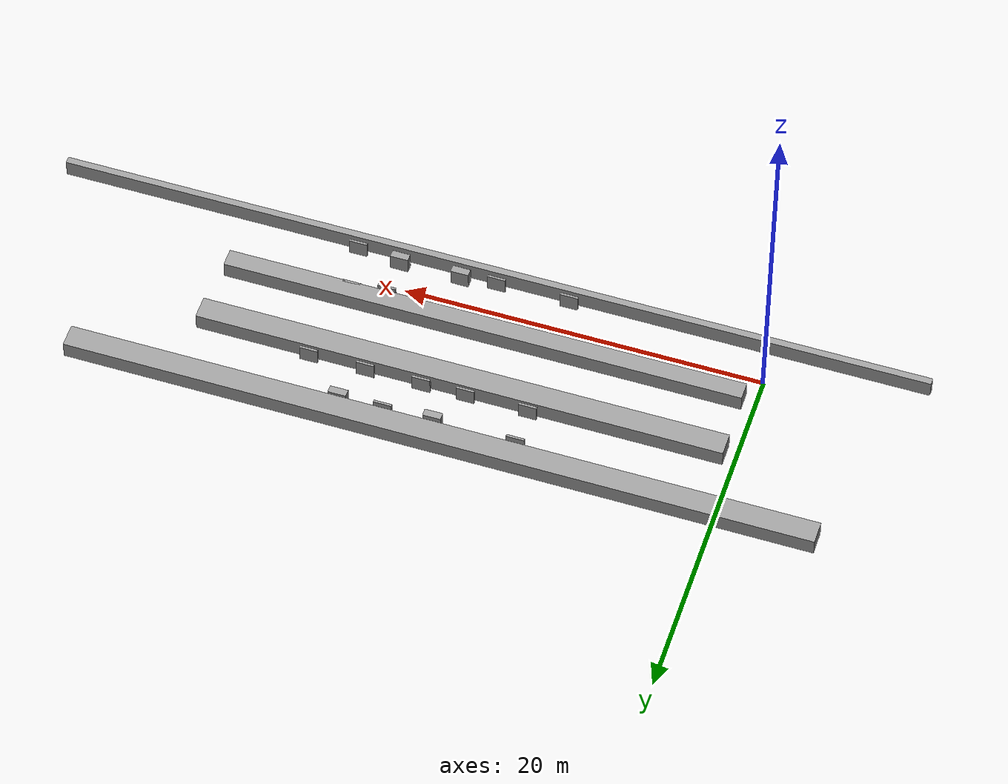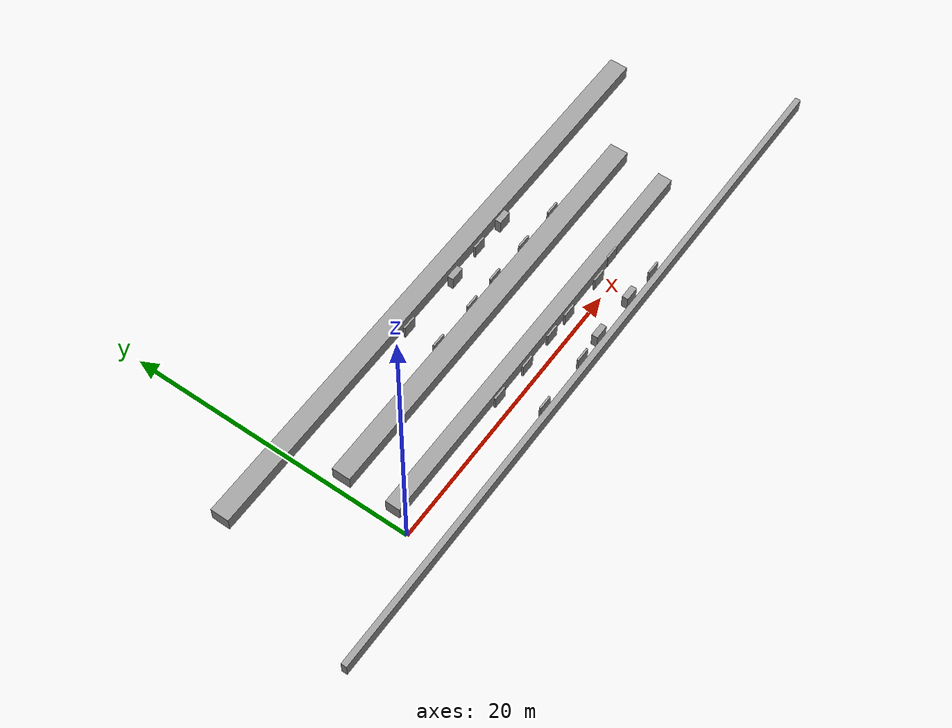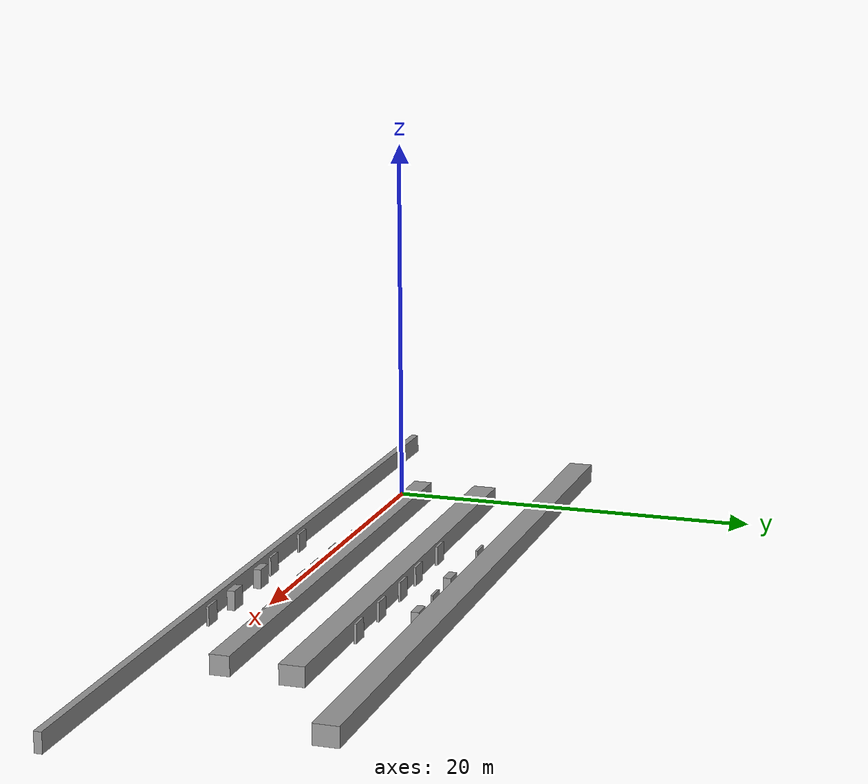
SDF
<sdf version="1.6">
 <world name="default">
  <model name="ground">
   <link name="body">
    <collision name="geom">
     <geometry><plane><normal>0 0 1</normal><size>1000 1000</size></plane></geometry>
     <surface><friction><ode><mu>100</mu><mu2>50</mu2></ode></friction></surface>
    </collision>
   </link>
   <static>1</static>
  </model>
  <model name="unit_box_0">
   <link name="link">
    <inertial>
     <mass>1</mass>
     <inertia>
      <ixx>0.166667</ixx>
      <ixy>0</ixy>
      <ixz>0</ixz>
      <iyy>0.166667</iyy>
      <iyz>0</iyz>
      <izz>0.166667</izz>
     </inertia>
    </inertial>
    <visual name="visual">
     <geometry><box><size>48.7334 0.388398 1</size></box></geometry>
     <material>
      <script><name>Gazebo/Grey</name><uri>file://media/materials/scripts/gazebo.material</uri></script>
      <shader type="pixel"/>
      <ambient>0.3 0.3 0.3 1</ambient>
      <diffuse>0.7 0.7 0.7 1</diffuse>
      <specular>0.01 0.01 0.01 1</specular>
      <emissive>0 0 0 1</emissive>
     </material>
    </visual>
    <collision name="collision">
     <geometry><box><size>48.7334 0.388398 1</size></box></geometry>
     <surface>
      <friction>
       <ode><mu>1</mu><mu2>1</mu2><fdir1>0 0 0</fdir1><slip1>0</slip1><slip2>0</slip2></ode>
       <torsional>
        <coefficient>1</coefficient>
        <patch_radius>0</patch_radius>
        <surface_radius>0</surface_radius>
        <use_patch_radius>1</use_patch_radius>
        <ode><slip>0</slip></ode>
       </torsional>
      </friction>
      <bounce><restitution_coefficient>0</restitution_coefficient><threshold>1e+06</threshold></bounce>
      <contact>
       <collide_without_contact>0</collide_without_contact>
       <collide_without_contact_bitmask>1</collide_without_contact_bitmask>
       <collide_bitmask>1</collide_bitmask>
       <ode>
        <soft_cfm>0</soft_cfm>
        <soft_erp>0.2</soft_erp>
        <kp>1e+13</kp>
        <kd>1</kd>
        <max_vel>0.01</max_vel>
        <min_depth>0</min_depth>
       </ode>
       <bullet>
        <split_impulse>1</split_impulse>
        <split_impulse_penetration_threshold>-0.01</split_impulse_penetration_threshold>
        <soft_cfm>0</soft_cfm>
        <soft_erp>0.2</soft_erp>
        <kp>1e+13</kp>
        <kd>1</kd>
       </bullet>
      </contact>
     </surface>
    </collision>
   </link>
   <static>1</static>
   <pose>15.7619 -2.17322 0.5 0 -0 0</pose>
  </model>
  <model name="unit_box_0_clone">
   <link name="link">
    <inertial>
     <mass>1</mass>
     <inertia>
      <ixx>0.166667</ixx>
      <ixy>0</ixy>
      <ixz>0</ixz>
      <iyy>0.166667</iyy>
      <iyz>0</iyz>
      <izz>0.166667</izz>
     </inertia>
    </inertial>
    <visual name="visual">
     <geometry><box><size>41.397 1.26672 1</size></box></geometry>
     <material>
      <script><name>Gazebo/Grey</name><uri>file://media/materials/scripts/gazebo.material</uri></script>
      <shader type="pixel"/>
      <ambient>0.3 0.3 0.3 1</ambient>
      <diffuse>0.7 0.7 0.7 1</diffuse>
      <specular>0.01 0.01 0.01 1</specular>
      <emissive>0 0 0 1</emissive>
     </material>
    </visual>
    <collision name="collision">
     <geometry><box><size>41.397 1.26672 1</size></box></geometry>
     <surface>
      <friction>
       <ode><mu>1</mu><mu2>1</mu2><fdir1>0 0 0</fdir1><slip1>0</slip1><slip2>0</slip2></ode>
       <torsional>
        <coefficient>1</coefficient>
        <patch_radius>0</patch_radius>
        <surface_radius>0</surface_radius>
        <use_patch_radius>1</use_patch_radius>
        <ode><slip>0</slip></ode>
       </torsional>
      </friction>
      <bounce><restitution_coefficient>0</restitution_coefficient><threshold>1e+06</threshold></bounce>
      <contact>
       <collide_without_contact>0</collide_without_contact>
       <collide_without_contact_bitmask>1</collide_without_contact_bitmask>
       <collide_bitmask>1</collide_bitmask>
       <ode>
        <soft_cfm>0</soft_cfm>
        <soft_erp>0.2</soft_erp>
        <kp>1e+13</kp>
        <kd>1</kd>
        <max_vel>0.01</max_vel>
        <min_depth>0</min_depth>
       </ode>
       <bullet>
        <split_impulse>1</split_impulse>
        <split_impulse_penetration_threshold>-0.01</split_impulse_penetration_threshold>
        <soft_cfm>0</soft_cfm>
        <soft_erp>0.2</soft_erp>
        <kp>1e+13</kp>
        <kd>1</kd>
       </bullet>
      </contact>
     </surface>
    </collision>
   </link>
   <static>1</static>
   <pose>15.1633 9.04141 0.5 0 -0 0</pose>
  </model>
  <model name="unit_box_1_clone_0_clone_4">
   <link name="link">
    <inertial>
     <mass>1</mass>
     <inertia>
      <ixx>0.166667</ixx>
      <ixy>0</ixy>
      <ixz>0</ixz>
      <iyy>0.166667</iyy>
      <iyz>0</iyz>
      <izz>0.166667</izz>
     </inertia>
    </inertial>
    <visual name="visual">
     <geometry><box><size>1 0.413614 1</size></box></geometry>
     <material>
      <script><name>Gazebo/Grey</name><uri>file://media/materials/scripts/gazebo.material</uri></script>
      <shader type="pixel"/>
      <ambient>0.3 0.3 0.3 1</ambient>
      <diffuse>0.7 0.7 0.7 1</diffuse>
      <specular>0.01 0.01 0.01 1</specular>
      <emissive>0 0 0 1</emissive>
     </material>
    </visual>
    <collision name="collision">
     <geometry><box><size>1 0.413614 1</size></box></geometry>
     <surface>
      <friction>
       <ode><mu>1</mu><mu2>1</mu2><fdir1>0 0 0</fdir1><slip1>0</slip1><slip2>0</slip2></ode>
       <torsional>
        <coefficient>1</coefficient>
        <patch_radius>0</patch_radius>
        <surface_radius>0</surface_radius>
        <use_patch_radius>1</use_patch_radius>
        <ode><slip>0</slip></ode>
       </torsional>
      </friction>
      <bounce><restitution_coefficient>0</restitution_coefficient><threshold>1e+06</threshold></bounce>
      <contact>
       <collide_without_contact>0</collide_without_contact>
       <collide_without_contact_bitmask>1</collide_without_contact_bitmask>
       <collide_bitmask>1</collide_bitmask>
       <ode>
        <soft_cfm>0</soft_cfm>
        <soft_erp>0.2</soft_erp>
        <kp>1e+13</kp>
        <kd>1</kd>
        <max_vel>0.01</max_vel>
        <min_depth>0</min_depth>
       </ode>
       <bullet>
        <split_impulse>1</split_impulse>
        <split_impulse_penetration_threshold>-0.01</split_impulse_penetration_threshold>
        <soft_cfm>0</soft_cfm>
        <soft_erp>0.2</soft_erp>
        <kp>1e+13</kp>
        <kd>1</kd>
       </bullet>
      </contact>
     </surface>
    </collision>
   </link>
   <static>1</static>
   <pose>17.3571 -1.53233 0.500035 1e-05 -0 0</pose>
  </model>
  <model name="unit_box_1_clone_0_clone_7">
   <link name="link">
    <inertial>
     <mass>1</mass>
     <inertia>
      <ixx>0.166667</ixx>
      <ixy>0</ixy>
      <ixz>0</ixz>
      <iyy>0.166667</iyy>
      <iyz>0</iyz>
      <izz>0.166667</izz>
     </inertia>
    </inertial>
    <visual name="visual">
     <geometry><box><size>1 0.413614 1</size></box></geometry>
     <material>
      <script><name>Gazebo/Grey</name><uri>file://media/materials/scripts/gazebo.material</uri></script>
      <shader type="pixel"/>
      <ambient>0.3 0.3 0.3 1</ambient>
      <diffuse>0.7 0.7 0.7 1</diffuse>
      <specular>0.01 0.01 0.01 1</specular>
      <emissive>0 0 0 1</emissive>
     </material>
    </visual>
    <collision name="collision">
     <geometry><box><size>1 0.413614 1</size></box></geometry>
     <surface>
      <friction>
       <ode><mu>1</mu><mu2>1</mu2><fdir1>0 0 0</fdir1><slip1>0</slip1><slip2>0</slip2></ode>
       <torsional>
        <coefficient>1</coefficient>
        <patch_radius>0</patch_radius>
        <surface_radius>0</surface_radius>
        <use_patch_radius>1</use_patch_radius>
        <ode><slip>0</slip></ode>
       </torsional>
      </friction>
      <bounce><restitution_coefficient>0</restitution_coefficient><threshold>1e+06</threshold></bounce>
      <contact>
       <collide_without_contact>0</collide_without_contact>
       <collide_without_contact_bitmask>1</collide_without_contact_bitmask>
       <collide_bitmask>1</collide_bitmask>
       <ode>
        <soft_cfm>0</soft_cfm>
        <soft_erp>0.2</soft_erp>
        <kp>1e+13</kp>
        <kd>1</kd>
        <max_vel>0.01</max_vel>
        <min_depth>0</min_depth>
       </ode>
       <bullet>
        <split_impulse>1</split_impulse>
        <split_impulse_penetration_threshold>-0.01</split_impulse_penetration_threshold>
        <soft_cfm>0</soft_cfm>
        <soft_erp>0.2</soft_erp>
        <kp>1e+13</kp>
        <kd>1</kd>
       </bullet>
      </contact>
     </surface>
    </collision>
   </link>
   <static>1</static>
   <pose>15.7661 7.99336 0.50003 1e-05 -0 0</pose>
  </model>
  <model name="unit_box_1_clone_0_clone_8">
   <link name="link">
    <inertial>
     <mass>1</mass>
     <inertia>
      <ixx>0.166667</ixx>
      <ixy>0</ixy>
      <ixz>0</ixz>
      <iyy>0.166667</iyy>
      <iyz>0</iyz>
      <izz>0.166667</izz>
     </inertia>
    </inertial>
    <visual name="visual">
     <geometry><box><size>1 0.413614 1</size></box></geometry>
     <material>
      <script><name>Gazebo/Grey</name><uri>file://media/materials/scripts/gazebo.material</uri></script>
      <shader type="pixel"/>
      <ambient>0.3 0.3 0.3 1</ambient>
      <diffuse>0.7 0.7 0.7 1</diffuse>
      <specular>0.01 0.01 0.01 1</specular>
      <emissive>0 0 0 1</emissive>
     </material>
    </visual>
    <collision name="collision">
     <geometry><box><size>1 0.413614 1</size></box></geometry>
     <surface>
      <friction>
       <ode><mu>1</mu><mu2>1</mu2><fdir1>0 0 0</fdir1><slip1>0</slip1><slip2>0</slip2></ode>
       <torsional>
        <coefficient>1</coefficient>
        <patch_radius>0</patch_radius>
        <surface_radius>0</surface_radius>
        <use_patch_radius>1</use_patch_radius>
        <ode><slip>0</slip></ode>
       </torsional>
      </friction>
      <bounce><restitution_coefficient>0</restitution_coefficient><threshold>1e+06</threshold></bounce>
      <contact>
       <collide_without_contact>0</collide_without_contact>
       <collide_without_contact_bitmask>1</collide_without_contact_bitmask>
       <collide_bitmask>1</collide_bitmask>
       <ode>
        <soft_cfm>0</soft_cfm>
        <soft_erp>0.2</soft_erp>
        <kp>1e+13</kp>
        <kd>1</kd>
        <max_vel>0.01</max_vel>
        <min_depth>0</min_depth>
       </ode>
       <bullet>
        <split_impulse>1</split_impulse>
        <split_impulse_penetration_threshold>-0.01</split_impulse_penetration_threshold>
        <soft_cfm>0</soft_cfm>
        <soft_erp>0.2</soft_erp>
        <kp>1e+13</kp>
        <kd>1</kd>
       </bullet>
      </contact>
     </surface>
    </collision>
   </link>
   <static>1</static>
   <pose>20.9877 8.09078 0.500032 1e-05 -0 0</pose>
  </model>
  <model name="unit_box_1_clone_0_clone_11">
   <link name="link">
    <inertial>
     <mass>1</mass>
     <inertia>
      <ixx>0.166667</ixx>
      <ixy>0</ixy>
      <ixz>0</ixz>
      <iyy>0.166667</iyy>
      <iyz>0</iyz>
      <izz>0.166667</izz>
     </inertia>
    </inertial>
    <visual name="visual">
     <geometry><box><size>1 0.413614 1</size></box></geometry>
     <material>
      <script><name>Gazebo/Grey</name><uri>file://media/materials/scripts/gazebo.material</uri></script>
      <shader type="pixel"/>
      <ambient>0.3 0.3 0.3 1</ambient>
      <diffuse>0.7 0.7 0.7 1</diffuse>
      <specular>0.01 0.01 0.01 1</specular>
      <emissive>0 0 0 1</emissive>
     </material>
    </visual>
    <collision name="collision">
     <geometry><box><size>1 0.413614 1</size></box></geometry>
     <surface>
      <friction>
       <ode><mu>1</mu><mu2>1</mu2><fdir1>0 0 0</fdir1><slip1>0</slip1><slip2>0</slip2></ode>
       <torsional>
        <coefficient>1</coefficient>
        <patch_radius>0</patch_radius>
        <surface_radius>0</surface_radius>
        <use_patch_radius>1</use_patch_radius>
        <ode><slip>0</slip></ode>
       </torsional>
      </friction>
      <bounce><restitution_coefficient>0</restitution_coefficient><threshold>1e+06</threshold></bounce>
      <contact>
       <collide_without_contact>0</collide_without_contact>
       <collide_without_contact_bitmask>1</collide_without_contact_bitmask>
       <collide_bitmask>1</collide_bitmask>
       <ode>
        <soft_cfm>0</soft_cfm>
        <soft_erp>0.2</soft_erp>
        <kp>1e+13</kp>
        <kd>1</kd>
        <max_vel>0.01</max_vel>
        <min_depth>0</min_depth>
       </ode>
       <bullet>
        <split_impulse>1</split_impulse>
        <split_impulse_penetration_threshold>-0.01</split_impulse_penetration_threshold>
        <soft_cfm>0</soft_cfm>
        <soft_erp>0.2</soft_erp>
        <kp>1e+13</kp>
        <kd>1</kd>
       </bullet>
      </contact>
     </surface>
    </collision>
   </link>
   <static>1</static>
   <pose>20.7603 -1.50473 0.500033 1e-05 -0 0</pose>
  </model>
  <model name="unit_box_1_clone_0_clone_16_clone_0">
   <link name="link">
    <inertial>
     <mass>1</mass>
     <inertia>
      <ixx>0.166667</ixx>
      <ixy>0</ixy>
      <ixz>0</ixz>
      <iyy>0.166667</iyy>
      <iyz>0</iyz>
      <izz>0.166667</izz>
     </inertia>
    </inertial>
    <visual name="visual">
     <geometry><box><size>1 0.12971 1</size></box></geometry>
     <material>
      <script><name>Gazebo/Grey</name><uri>file://media/materials/scripts/gazebo.material</uri></script>
      <shader type="pixel"/>
      <ambient>0.3 0.3 0.3 1</ambient>
      <diffuse>0.7 0.7 0.7 1</diffuse>
      <specular>0.01 0.01 0.01 1</specular>
      <emissive>0 0 0 1</emissive>
     </material>
    </visual>
    <collision name="collision">
     <geometry><box><size>1 0.12971 1</size></box></geometry>
     <surface>
      <friction>
       <ode><mu>1</mu><mu2>1</mu2><fdir1>0 0 0</fdir1><slip1>0</slip1><slip2>0</slip2></ode>
       <torsional>
        <coefficient>1</coefficient>
        <patch_radius>0</patch_radius>
        <surface_radius>0</surface_radius>
        <use_patch_radius>1</use_patch_radius>
        <ode><slip>0</slip></ode>
       </torsional>
      </friction>
      <bounce><restitution_coefficient>0</restitution_coefficient><threshold>1e+06</threshold></bounce>
      <contact>
       <collide_without_contact>0</collide_without_contact>
       <collide_without_contact_bitmask>1</collide_without_contact_bitmask>
       <collide_bitmask>1</collide_bitmask>
       <ode>
        <soft_cfm>0</soft_cfm>
        <soft_erp>0.2</soft_erp>
        <kp>1e+13</kp>
        <kd>1</kd>
        <max_vel>0.01</max_vel>
        <min_depth>0</min_depth>
       </ode>
       <bullet>
        <split_impulse>1</split_impulse>
        <split_impulse_penetration_threshold>-0.01</split_impulse_penetration_threshold>
        <soft_cfm>0</soft_cfm>
        <soft_erp>0.2</soft_erp>
        <kp>1e+13</kp>
        <kd>1</kd>
       </bullet>
      </contact>
     </surface>
    </collision>
   </link>
   <static>1</static>
   <pose>11.3045 -1.70035 0.500002 1e-05 -0 0</pose>
  </model>
  <model name="unit_box_1_clone_0_clone_16_clone_1">
   <link name="link">
    <inertial>
     <mass>1</mass>
     <inertia>
      <ixx>0.166667</ixx>
      <ixy>0</ixy>
      <ixz>0</ixz>
      <iyy>0.166667</iyy>
      <iyz>0</iyz>
      <izz>0.166667</izz>
     </inertia>
    </inertial>
    <visual name="visual">
     <geometry><box><size>1 0.12971 1</size></box></geometry>
     <material>
      <script><name>Gazebo/Grey</name><uri>file://media/materials/scripts/gazebo.material</uri></script>
      <shader type="pixel"/>
      <ambient>0.3 0.3 0.3 1</ambient>
      <diffuse>0.7 0.7 0.7 1</diffuse>
      <specular>0.01 0.01 0.01 1</specular>
      <emissive>0 0 0 1</emissive>
     </material>
    </visual>
    <collision name="collision">
     <geometry><box><size>1 0.12971 1</size></box></geometry>
     <surface>
      <friction>
       <ode><mu>1</mu><mu2>1</mu2><fdir1>0 0 0</fdir1><slip1>0</slip1><slip2>0</slip2></ode>
       <torsional>
        <coefficient>1</coefficient>
        <patch_radius>0</patch_radius>
        <surface_radius>0</surface_radius>
        <use_patch_radius>1</use_patch_radius>
        <ode><slip>0</slip></ode>
       </torsional>
      </friction>
      <bounce><restitution_coefficient>0</restitution_coefficient><threshold>1e+06</threshold></bounce>
      <contact>
       <collide_without_contact>0</collide_without_contact>
       <collide_without_contact_bitmask>1</collide_without_contact_bitmask>
       <collide_bitmask>1</collide_bitmask>
       <ode>
        <soft_cfm>0</soft_cfm>
        <soft_erp>0.2</soft_erp>
        <kp>1e+13</kp>
        <kd>1</kd>
        <max_vel>0.01</max_vel>
        <min_depth>0</min_depth>
       </ode>
       <bullet>
        <split_impulse>1</split_impulse>
        <split_impulse_penetration_threshold>-0.01</split_impulse_penetration_threshold>
        <soft_cfm>0</soft_cfm>
        <soft_erp>0.2</soft_erp>
        <kp>1e+13</kp>
        <kd>1</kd>
       </bullet>
      </contact>
     </surface>
    </collision>
   </link>
   <static>1</static>
   <pose>15.3663 -1.65278 0.500002 1e-05 -0 0</pose>
  </model>
  <model name="unit_box_1_clone_0_clone_16_clone_2">
   <link name="link">
    <inertial>
     <mass>1</mass>
     <inertia>
      <ixx>0.166667</ixx>
      <ixy>0</ixy>
      <ixz>0</ixz>
      <iyy>0.166667</iyy>
      <iyz>0</iyz>
      <izz>0.166667</izz>
     </inertia>
    </inertial>
    <visual name="visual">
     <geometry><box><size>1 0.12971 1</size></box></geometry>
     <material>
      <script><name>Gazebo/Grey</name><uri>file://media/materials/scripts/gazebo.material</uri></script>
      <shader type="pixel"/>
      <ambient>0.3 0.3 0.3 1</ambient>
      <diffuse>0.7 0.7 0.7 1</diffuse>
      <specular>0.01 0.01 0.01 1</specular>
      <emissive>0 0 0 1</emissive>
     </material>
    </visual>
    <collision name="collision">
     <geometry><box><size>1 0.12971 1</size></box></geometry>
     <surface>
      <friction>
       <ode><mu>1</mu><mu2>1</mu2><fdir1>0 0 0</fdir1><slip1>0</slip1><slip2>0</slip2></ode>
       <torsional>
        <coefficient>1</coefficient>
        <patch_radius>0</patch_radius>
        <surface_radius>0</surface_radius>
        <use_patch_radius>1</use_patch_radius>
        <ode><slip>0</slip></ode>
       </torsional>
      </friction>
      <bounce><restitution_coefficient>0</restitution_coefficient><threshold>1e+06</threshold></bounce>
      <contact>
       <collide_without_contact>0</collide_without_contact>
       <collide_without_contact_bitmask>1</collide_without_contact_bitmask>
       <collide_bitmask>1</collide_bitmask>
       <ode>
        <soft_cfm>0</soft_cfm>
        <soft_erp>0.2</soft_erp>
        <kp>1e+13</kp>
        <kd>1</kd>
        <max_vel>0.01</max_vel>
        <min_depth>0</min_depth>
       </ode>
       <bullet>
        <split_impulse>1</split_impulse>
        <split_impulse_penetration_threshold>-0.01</split_impulse_penetration_threshold>
        <soft_cfm>0</soft_cfm>
        <soft_erp>0.2</soft_erp>
        <kp>1e+13</kp>
        <kd>1</kd>
       </bullet>
      </contact>
     </surface>
    </collision>
   </link>
   <static>1</static>
   <pose>23.1911 -1.67165 0.500002 1e-05 -0 0</pose>
  </model>
  <model name="unit_box_1_clone_0_clone_16_clone_8">
   <link name="link">
    <inertial>
     <mass>1</mass>
     <inertia>
      <ixx>0.166667</ixx>
      <ixy>0</ixy>
      <ixz>0</ixz>
      <iyy>0.166667</iyy>
      <iyz>0</iyz>
      <izz>0.166667</izz>
     </inertia>
    </inertial>
    <visual name="visual">
     <geometry><box><size>1 0.12971 1</size></box></geometry>
     <material>
      <script><name>Gazebo/Grey</name><uri>file://media/materials/scripts/gazebo.material</uri></script>
      <shader type="pixel"/>
      <ambient>0.3 0.3 0.3 1</ambient>
      <diffuse>0.7 0.7 0.7 1</diffuse>
      <specular>0.01 0.01 0.01 1</specular>
      <emissive>0 0 0 1</emissive>
     </material>
    </visual>
    <collision name="collision">
     <geometry><box><size>1 0.12971 1</size></box></geometry>
     <surface>
      <friction>
       <ode><mu>1</mu><mu2>1</mu2><fdir1>0 0 0</fdir1><slip1>0</slip1><slip2>0</slip2></ode>
       <torsional>
        <coefficient>1</coefficient>
        <patch_radius>0</patch_radius>
        <surface_radius>0</surface_radius>
        <use_patch_radius>1</use_patch_radius>
        <ode><slip>0</slip></ode>
       </torsional>
      </friction>
      <bounce><restitution_coefficient>0</restitution_coefficient><threshold>1e+06</threshold></bounce>
      <contact>
       <collide_without_contact>0</collide_without_contact>
       <collide_without_contact_bitmask>1</collide_without_contact_bitmask>
       <collide_bitmask>1</collide_bitmask>
       <ode>
        <soft_cfm>0</soft_cfm>
        <soft_erp>0.2</soft_erp>
        <kp>1e+13</kp>
        <kd>1</kd>
        <max_vel>0.01</max_vel>
        <min_depth>0</min_depth>
       </ode>
       <bullet>
        <split_impulse>1</split_impulse>
        <split_impulse_penetration_threshold>-0.01</split_impulse_penetration_threshold>
        <soft_cfm>0</soft_cfm>
        <soft_erp>0.2</soft_erp>
        <kp>1e+13</kp>
        <kd>1</kd>
       </bullet>
      </contact>
     </surface>
    </collision>
   </link>
   <static>1</static>
   <pose>18.5 8.11859 0.499998 1e-05 -0 0</pose>
  </model>
  <model name="unit_box_1_clone_0_clone_16_clone_9">
   <link name="link">
    <inertial>
     <mass>1</mass>
     <inertia>
      <ixx>0.166667</ixx>
      <ixy>0</ixy>
      <ixz>0</ixz>
      <iyy>0.166667</iyy>
      <iyz>0</iyz>
      <izz>0.166667</izz>
     </inertia>
    </inertial>
    <visual name="visual">
     <geometry><box><size>1 0.12971 1</size></box></geometry>
     <material>
      <script><name>Gazebo/Grey</name><uri>file://media/materials/scripts/gazebo.material</uri></script>
      <shader type="pixel"/>
      <ambient>0.3 0.3 0.3 1</ambient>
      <diffuse>0.7 0.7 0.7 1</diffuse>
      <specular>0.01 0.01 0.01 1</specular>
      <emissive>0 0 0 1</emissive>
     </material>
    </visual>
    <collision name="collision">
     <geometry><box><size>1 0.12971 1</size></box></geometry>
     <surface>
      <friction>
       <ode><mu>1</mu><mu2>1</mu2><fdir1>0 0 0</fdir1><slip1>0</slip1><slip2>0</slip2></ode>
       <torsional>
        <coefficient>1</coefficient>
        <patch_radius>0</patch_radius>
        <surface_radius>0</surface_radius>
        <use_patch_radius>1</use_patch_radius>
        <ode><slip>0</slip></ode>
       </torsional>
      </friction>
      <bounce><restitution_coefficient>0</restitution_coefficient><threshold>1e+06</threshold></bounce>
      <contact>
       <collide_without_contact>0</collide_without_contact>
       <collide_without_contact_bitmask>1</collide_without_contact_bitmask>
       <collide_bitmask>1</collide_bitmask>
       <ode>
        <soft_cfm>0</soft_cfm>
        <soft_erp>0.2</soft_erp>
        <kp>1e+13</kp>
        <kd>1</kd>
        <max_vel>0.01</max_vel>
        <min_depth>0</min_depth>
       </ode>
       <bullet>
        <split_impulse>1</split_impulse>
        <split_impulse_penetration_threshold>-0.01</split_impulse_penetration_threshold>
        <soft_cfm>0</soft_cfm>
        <soft_erp>0.2</soft_erp>
        <kp>1e+13</kp>
        <kd>1</kd>
       </bullet>
      </contact>
     </surface>
    </collision>
   </link>
   <static>1</static>
   <pose>11.1735 8.09045 0.499998 1e-05 -0 0</pose>
  </model>
  <model name="unit_box_0_clone_0_clone">
   <link name="link">
    <inertial>
     <mass>1</mass>
     <inertia>
      <ixx>0.166667</ixx>
      <ixy>0</ixy>
      <ixz>0</ixz>
      <iyy>0.166667</iyy>
      <iyz>0</iyz>
      <izz>0.166667</izz>
     </inertia>
    </inertial>
    <visual name="visual">
     <geometry><box><size>29.2615 1.26672 1</size></box></geometry>
     <material>
      <script><name>Gazebo/Grey</name><uri>file://media/materials/scripts/gazebo.material</uri></script>
      <shader type="pixel"/>
      <ambient>0.3 0.3 0.3 1</ambient>
      <diffuse>0.7 0.7 0.7 1</diffuse>
      <specular>0.01 0.01 0.01 1</specular>
      <emissive>0 0 0 1</emissive>
     </material>
    </visual>
    <collision name="collision">
     <geometry><box><size>29.2615 1.26672 1</size></box></geometry>
     <surface>
      <friction>
       <ode><mu>1</mu><mu2>1</mu2><fdir1>0 0 0</fdir1><slip1>0</slip1><slip2>0</slip2></ode>
       <torsional>
        <coefficient>1</coefficient>
        <patch_radius>0</patch_radius>
        <surface_radius>0</surface_radius>
        <use_patch_radius>1</use_patch_radius>
        <ode><slip>0</slip></ode>
       </torsional>
      </friction>
      <bounce><restitution_coefficient>0</restitution_coefficient><threshold>1e+06</threshold></bounce>
      <contact>
       <collide_without_contact>0</collide_without_contact>
       <collide_without_contact_bitmask>1</collide_without_contact_bitmask>
       <collide_bitmask>1</collide_bitmask>
       <ode>
        <soft_cfm>0</soft_cfm>
        <soft_erp>0.2</soft_erp>
        <kp>1e+13</kp>
        <kd>1</kd>
        <max_vel>0.01</max_vel>
        <min_depth>0</min_depth>
       </ode>
       <bullet>
        <split_impulse>1</split_impulse>
        <split_impulse_penetration_threshold>-0.01</split_impulse_penetration_threshold>
        <soft_cfm>0</soft_cfm>
        <soft_erp>0.2</soft_erp>
        <kp>1e+13</kp>
        <kd>1</kd>
       </bullet>
      </contact>
     </surface>
    </collision>
   </link>
   <static>1</static>
   <pose>15.1869 5.09819 0.5 0 -0 0</pose>
  </model>
  <model name="unit_box_1_clone_0_clone_16_clone_3_clone">
   <link name="link">
    <inertial>
     <mass>1</mass>
     <inertia>
      <ixx>0.166667</ixx>
      <ixy>0</ixy>
      <ixz>0</ixz>
      <iyy>0.166667</iyy>
      <iyz>0</iyz>
      <izz>0.166667</izz>
     </inertia>
    </inertial>
    <visual name="visual">
     <geometry><box><size>1 0.12971 1</size></box></geometry>
     <material>
      <script><name>Gazebo/Grey</name><uri>file://media/materials/scripts/gazebo.material</uri></script>
      <shader type="pixel"/>
      <ambient>0.3 0.3 0.3 1</ambient>
      <diffuse>0.7 0.7 0.7 1</diffuse>
      <specular>0.01 0.01 0.01 1</specular>
      <emissive>0 0 0 1</emissive>
     </material>
    </visual>
    <collision name="collision">
     <geometry><box><size>1 0.12971 1</size></box></geometry>
     <surface>
      <friction>
       <ode><mu>1</mu><mu2>1</mu2><fdir1>0 0 0</fdir1><slip1>0</slip1><slip2>0</slip2></ode>
       <torsional>
        <coefficient>1</coefficient>
        <patch_radius>0</patch_radius>
        <surface_radius>0</surface_radius>
        <use_patch_radius>1</use_patch_radius>
        <ode><slip>0</slip></ode>
       </torsional>
      </friction>
      <bounce><restitution_coefficient>0</restitution_coefficient><threshold>1e+06</threshold></bounce>
      <contact>
       <collide_without_contact>0</collide_without_contact>
       <collide_without_contact_bitmask>1</collide_without_contact_bitmask>
       <collide_bitmask>1</collide_bitmask>
       <ode>
        <soft_cfm>0</soft_cfm>
        <soft_erp>0.2</soft_erp>
        <kp>1e+13</kp>
        <kd>1</kd>
        <max_vel>0.01</max_vel>
        <min_depth>0</min_depth>
       </ode>
       <bullet>
        <split_impulse>1</split_impulse>
        <split_impulse_penetration_threshold>-0.01</split_impulse_penetration_threshold>
        <soft_cfm>0</soft_cfm>
        <soft_erp>0.2</soft_erp>
        <kp>1e+13</kp>
        <kd>1</kd>
       </bullet>
      </contact>
     </surface>
    </collision>
   </link>
   <static>1</static>
   <pose>20.754 0.722945 0.5 1e-05 -0 0</pose>
  </model>
  <model name="unit_box_1_clone_0_clone_16_clone_3_clone_0">
   <link name="link">
    <inertial>
     <mass>1</mass>
     <inertia>
      <ixx>0.166667</ixx>
      <ixy>0</ixy>
      <ixz>0</ixz>
      <iyy>0.166667</iyy>
      <iyz>0</iyz>
      <izz>0.166667</izz>
     </inertia>
    </inertial>
    <visual name="visual">
     <geometry><box><size>1 0.12971 1</size></box></geometry>
     <material>
      <script><name>Gazebo/Grey</name><uri>file://media/materials/scripts/gazebo.material</uri></script>
      <shader type="pixel"/>
      <ambient>0.3 0.3 0.3 1</ambient>
      <diffuse>0.7 0.7 0.7 1</diffuse>
      <specular>0.01 0.01 0.01 1</specular>
      <emissive>0 0 0 1</emissive>
     </material>
    </visual>
    <collision name="collision">
     <geometry><box><size>1 0.12971 1</size></box></geometry>
     <surface>
      <friction>
       <ode><mu>1</mu><mu2>1</mu2><fdir1>0 0 0</fdir1><slip1>0</slip1><slip2>0</slip2></ode>
       <torsional>
        <coefficient>1</coefficient>
        <patch_radius>0</patch_radius>
        <surface_radius>0</surface_radius>
        <use_patch_radius>1</use_patch_radius>
        <ode><slip>0</slip></ode>
       </torsional>
      </friction>
      <bounce><restitution_coefficient>0</restitution_coefficient><threshold>1e+06</threshold></bounce>
      <contact>
       <collide_without_contact>0</collide_without_contact>
       <collide_without_contact_bitmask>1</collide_without_contact_bitmask>
       <collide_bitmask>1</collide_bitmask>
       <ode>
        <soft_cfm>0</soft_cfm>
        <soft_erp>0.2</soft_erp>
        <kp>1e+13</kp>
        <kd>1</kd>
        <max_vel>0.01</max_vel>
        <min_depth>0</min_depth>
       </ode>
       <bullet>
        <split_impulse>1</split_impulse>
        <split_impulse_penetration_threshold>-0.01</split_impulse_penetration_threshold>
        <soft_cfm>0</soft_cfm>
        <soft_erp>0.2</soft_erp>
        <kp>1e+13</kp>
        <kd>1</kd>
       </bullet>
      </contact>
     </surface>
    </collision>
   </link>
   <static>1</static>
   <pose>22.654 1.02012 0.500003 1e-05 -0 0</pose>
  </model>
  <model name="unit_box_1_clone_0_clone_16_clone_3_clone_2">
   <link name="link">
    <inertial>
     <mass>1</mass>
     <inertia>
      <ixx>0.166667</ixx>
      <ixy>0</ixy>
      <ixz>0</ixz>
      <iyy>0.166667</iyy>
      <iyz>0</iyz>
      <izz>0.166667</izz>
     </inertia>
    </inertial>
    <visual name="visual">
     <geometry><box><size>1 0.12971 1</size></box></geometry>
     <material>
      <script><name>Gazebo/Grey</name><uri>file://media/materials/scripts/gazebo.material</uri></script>
      <shader type="pixel"/>
      <ambient>0.3 0.3 0.3 1</ambient>
      <diffuse>0.7 0.7 0.7 1</diffuse>
      <specular>0.01 0.01 0.01 1</specular>
      <emissive>0 0 0 1</emissive>
     </material>
    </visual>
    <collision name="collision">
     <geometry><box><size>1 0.12971 1</size></box></geometry>
     <surface>
      <friction>
       <ode><mu>1</mu><mu2>1</mu2><fdir1>0 0 0</fdir1><slip1>0</slip1><slip2>0</slip2></ode>
       <torsional>
        <coefficient>1</coefficient>
        <patch_radius>0</patch_radius>
        <surface_radius>0</surface_radius>
        <use_patch_radius>1</use_patch_radius>
        <ode><slip>0</slip></ode>
       </torsional>
      </friction>
      <bounce><restitution_coefficient>0</restitution_coefficient><threshold>1e+06</threshold></bounce>
      <contact>
       <collide_without_contact>0</collide_without_contact>
       <collide_without_contact_bitmask>1</collide_without_contact_bitmask>
       <collide_bitmask>1</collide_bitmask>
       <ode>
        <soft_cfm>0</soft_cfm>
        <soft_erp>0.2</soft_erp>
        <kp>1e+13</kp>
        <kd>1</kd>
        <max_vel>0.01</max_vel>
        <min_depth>0</min_depth>
       </ode>
       <bullet>
        <split_impulse>1</split_impulse>
        <split_impulse_penetration_threshold>-0.01</split_impulse_penetration_threshold>
        <soft_cfm>0</soft_cfm>
        <soft_erp>0.2</soft_erp>
        <kp>1e+13</kp>
        <kd>1</kd>
       </bullet>
      </contact>
     </surface>
    </collision>
   </link>
   <static>1</static>
   <pose>15.6998 0.773258 0.500001 1e-05 -0 0</pose>
  </model>
  <model name="unit_box_1_clone_0_clone_16_clone_3_clone_3">
   <link name="link">
    <inertial>
     <mass>1</mass>
     <inertia>
      <ixx>0.166667</ixx>
      <ixy>0</ixy>
      <ixz>0</ixz>
      <iyy>0.166667</iyy>
      <iyz>0</iyz>
      <izz>0.166667</izz>
     </inertia>
    </inertial>
    <visual name="visual">
     <geometry><box><size>1 0.12971 1</size></box></geometry>
     <material>
      <script><name>Gazebo/Grey</name><uri>file://media/materials/scripts/gazebo.material</uri></script>
      <shader type="pixel"/>
      <ambient>0.3 0.3 0.3 1</ambient>
      <diffuse>0.7 0.7 0.7 1</diffuse>
      <specular>0.01 0.01 0.01 1</specular>
      <emissive>0 0 0 1</emissive>
     </material>
    </visual>
    <collision name="collision">
     <geometry><box><size>1 0.12971 1</size></box></geometry>
     <surface>
      <friction>
       <ode><mu>1</mu><mu2>1</mu2><fdir1>0 0 0</fdir1><slip1>0</slip1><slip2>0</slip2></ode>
       <torsional>
        <coefficient>1</coefficient>
        <patch_radius>0</patch_radius>
        <surface_radius>0</surface_radius>
        <use_patch_radius>1</use_patch_radius>
        <ode><slip>0</slip></ode>
       </torsional>
      </friction>
      <bounce><restitution_coefficient>0</restitution_coefficient><threshold>1e+06</threshold></bounce>
      <contact>
       <collide_without_contact>0</collide_without_contact>
       <collide_without_contact_bitmask>1</collide_without_contact_bitmask>
       <collide_bitmask>1</collide_bitmask>
       <ode>
        <soft_cfm>0</soft_cfm>
        <soft_erp>0.2</soft_erp>
        <kp>1e+13</kp>
        <kd>1</kd>
        <max_vel>0.01</max_vel>
        <min_depth>0</min_depth>
       </ode>
       <bullet>
        <split_impulse>1</split_impulse>
        <split_impulse_penetration_threshold>-0.01</split_impulse_penetration_threshold>
        <soft_cfm>0</soft_cfm>
        <soft_erp>0.2</soft_erp>
        <kp>1e+13</kp>
        <kd>1</kd>
       </bullet>
      </contact>
     </surface>
    </collision>
   </link>
   <static>1</static>
   <pose>10.2984 0.818333 0.500001 1e-05 -0 0</pose>
  </model>
  <model name="unit_box_1_clone_0_clone_16_clone_3_clone_8">
   <link name="link">
    <inertial>
     <mass>1</mass>
     <inertia>
      <ixx>0.166667</ixx>
      <ixy>0</ixy>
      <ixz>0</ixz>
      <iyy>0.166667</iyy>
      <iyz>0</iyz>
      <izz>0.166667</izz>
     </inertia>
    </inertial>
    <visual name="visual">
     <geometry><box><size>1 0.12971 1</size></box></geometry>
     <material>
      <script><name>Gazebo/Grey</name><uri>file://media/materials/scripts/gazebo.material</uri></script>
      <shader type="pixel"/>
      <ambient>0.3 0.3 0.3 1</ambient>
      <diffuse>0.7 0.7 0.7 1</diffuse>
      <specular>0.01 0.01 0.01 1</specular>
      <emissive>0 0 0 1</emissive>
     </material>
    </visual>
    <collision name="collision">
     <geometry><box><size>1 0.12971 1</size></box></geometry>
     <surface>
      <friction>
       <ode><mu>1</mu><mu2>1</mu2><fdir1>0 0 0</fdir1><slip1>0</slip1><slip2>0</slip2></ode>
       <torsional>
        <coefficient>1</coefficient>
        <patch_radius>0</patch_radius>
        <surface_radius>0</surface_radius>
        <use_patch_radius>1</use_patch_radius>
        <ode><slip>0</slip></ode>
       </torsional>
      </friction>
      <bounce><restitution_coefficient>0</restitution_coefficient><threshold>1e+06</threshold></bounce>
      <contact>
       <collide_without_contact>0</collide_without_contact>
       <collide_without_contact_bitmask>1</collide_without_contact_bitmask>
       <collide_bitmask>1</collide_bitmask>
       <ode>
        <soft_cfm>0</soft_cfm>
        <soft_erp>0.2</soft_erp>
        <kp>1e+13</kp>
        <kd>1</kd>
        <max_vel>0.01</max_vel>
        <min_depth>0</min_depth>
       </ode>
       <bullet>
        <split_impulse>1</split_impulse>
        <split_impulse_penetration_threshold>-0.01</split_impulse_penetration_threshold>
        <soft_cfm>0</soft_cfm>
        <soft_erp>0.2</soft_erp>
        <kp>1e+13</kp>
        <kd>1</kd>
       </bullet>
      </contact>
     </surface>
    </collision>
   </link>
   <static>1</static>
   <pose>11.1855 5.92083 0.500001 1e-05 -0 0</pose>
  </model>
  <model name="unit_box_1_clone_0_clone_16_clone_3_clone_9">
   <link name="link">
    <inertial>
     <mass>1</mass>
     <inertia>
      <ixx>0.166667</ixx>
      <ixy>0</ixy>
      <ixz>0</ixz>
      <iyy>0.166667</iyy>
      <iyz>0</iyz>
      <izz>0.166667</izz>
     </inertia>
    </inertial>
    <visual name="visual">
     <geometry><box><size>1 0.12971 1</size></box></geometry>
     <material>
      <script><name>Gazebo/Grey</name><uri>file://media/materials/scripts/gazebo.material</uri></script>
      <shader type="pixel"/>
      <ambient>0.3 0.3 0.3 1</ambient>
      <diffuse>0.7 0.7 0.7 1</diffuse>
      <specular>0.01 0.01 0.01 1</specular>
      <emissive>0 0 0 1</emissive>
     </material>
    </visual>
    <collision name="collision">
     <geometry><box><size>1 0.12971 1</size></box></geometry>
     <surface>
      <friction>
       <ode><mu>1</mu><mu2>1</mu2><fdir1>0 0 0</fdir1><slip1>0</slip1><slip2>0</slip2></ode>
       <torsional>
        <coefficient>1</coefficient>
        <patch_radius>0</patch_radius>
        <surface_radius>0</surface_radius>
        <use_patch_radius>1</use_patch_radius>
        <ode><slip>0</slip></ode>
       </torsional>
      </friction>
      <bounce><restitution_coefficient>0</restitution_coefficient><threshold>1e+06</threshold></bounce>
      <contact>
       <collide_without_contact>0</collide_without_contact>
       <collide_without_contact_bitmask>1</collide_without_contact_bitmask>
       <collide_bitmask>1</collide_bitmask>
       <ode>
        <soft_cfm>0</soft_cfm>
        <soft_erp>0.2</soft_erp>
        <kp>1e+13</kp>
        <kd>1</kd>
        <max_vel>0.01</max_vel>
        <min_depth>0</min_depth>
       </ode>
       <bullet>
        <split_impulse>1</split_impulse>
        <split_impulse_penetration_threshold>-0.01</split_impulse_penetration_threshold>
        <soft_cfm>0</soft_cfm>
        <soft_erp>0.2</soft_erp>
        <kp>1e+13</kp>
        <kd>1</kd>
       </bullet>
      </contact>
     </surface>
    </collision>
   </link>
   <static>1</static>
   <pose>14.6373 5.91889 0.500001 1e-05 -0 0</pose>
  </model>
  <model name="unit_box_1_clone_0_clone_16_clone_3_clone_10">
   <link name="link">
    <inertial>
     <mass>1</mass>
     <inertia>
      <ixx>0.166667</ixx>
      <ixy>0</ixy>
      <ixz>0</ixz>
      <iyy>0.166667</iyy>
      <iyz>0</iyz>
      <izz>0.166667</izz>
     </inertia>
    </inertial>
    <visual name="visual">
     <geometry><box><size>1 0.12971 1</size></box></geometry>
     <material>
      <script><name>Gazebo/Grey</name><uri>file://media/materials/scripts/gazebo.material</uri></script>
      <shader type="pixel"/>
      <ambient>0.3 0.3 0.3 1</ambient>
      <diffuse>0.7 0.7 0.7 1</diffuse>
      <specular>0.01 0.01 0.01 1</specular>
      <emissive>0 0 0 1</emissive>
     </material>
    </visual>
    <collision name="collision">
     <geometry><box><size>1 0.12971 1</size></box></geometry>
     <surface>
      <friction>
       <ode><mu>1</mu><mu2>1</mu2><fdir1>0 0 0</fdir1><slip1>0</slip1><slip2>0</slip2></ode>
       <torsional>
        <coefficient>1</coefficient>
        <patch_radius>0</patch_radius>
        <surface_radius>0</surface_radius>
        <use_patch_radius>1</use_patch_radius>
        <ode><slip>0</slip></ode>
       </torsional>
      </friction>
      <bounce><restitution_coefficient>0</restitution_coefficient><threshold>1e+06</threshold></bounce>
      <contact>
       <collide_without_contact>0</collide_without_contact>
       <collide_without_contact_bitmask>1</collide_without_contact_bitmask>
       <collide_bitmask>1</collide_bitmask>
       <ode>
        <soft_cfm>0</soft_cfm>
        <soft_erp>0.2</soft_erp>
        <kp>1e+13</kp>
        <kd>1</kd>
        <max_vel>0.01</max_vel>
        <min_depth>0</min_depth>
       </ode>
       <bullet>
        <split_impulse>1</split_impulse>
        <split_impulse_penetration_threshold>-0.01</split_impulse_penetration_threshold>
        <soft_cfm>0</soft_cfm>
        <soft_erp>0.2</soft_erp>
        <kp>1e+13</kp>
        <kd>1</kd>
       </bullet>
      </contact>
     </surface>
    </collision>
   </link>
   <static>1</static>
   <pose>17.0894 5.94721 0.500002 1e-05 -0 0</pose>
  </model>
  <model name="unit_box_1_clone_0_clone_16_clone_3_clone_11">
   <link name="link">
    <inertial>
     <mass>1</mass>
     <inertia>
      <ixx>0.166667</ixx>
      <ixy>0</ixy>
      <ixz>0</ixz>
      <iyy>0.166667</iyy>
      <iyz>0</iyz>
      <izz>0.166667</izz>
     </inertia>
    </inertial>
    <visual name="visual">
     <geometry><box><size>1 0.12971 1</size></box></geometry>
     <material>
      <script><name>Gazebo/Grey</name><uri>file://media/materials/scripts/gazebo.material</uri></script>
      <shader type="pixel"/>
      <ambient>0.3 0.3 0.3 1</ambient>
      <diffuse>0.7 0.7 0.7 1</diffuse>
      <specular>0.01 0.01 0.01 1</specular>
      <emissive>0 0 0 1</emissive>
     </material>
    </visual>
    <collision name="collision">
     <geometry><box><size>1 0.12971 1</size></box></geometry>
     <surface>
      <friction>
       <ode><mu>1</mu><mu2>1</mu2><fdir1>0 0 0</fdir1><slip1>0</slip1><slip2>0</slip2></ode>
       <torsional>
        <coefficient>1</coefficient>
        <patch_radius>0</patch_radius>
        <surface_radius>0</surface_radius>
        <use_patch_radius>1</use_patch_radius>
        <ode><slip>0</slip></ode>
       </torsional>
      </friction>
      <bounce><restitution_coefficient>0</restitution_coefficient><threshold>1e+06</threshold></bounce>
      <contact>
       <collide_without_contact>0</collide_without_contact>
       <collide_without_contact_bitmask>1</collide_without_contact_bitmask>
       <collide_bitmask>1</collide_bitmask>
       <ode>
        <soft_cfm>0</soft_cfm>
        <soft_erp>0.2</soft_erp>
        <kp>1e+13</kp>
        <kd>1</kd>
        <max_vel>0.01</max_vel>
        <min_depth>0</min_depth>
       </ode>
       <bullet>
        <split_impulse>1</split_impulse>
        <split_impulse_penetration_threshold>-0.01</split_impulse_penetration_threshold>
        <soft_cfm>0</soft_cfm>
        <soft_erp>0.2</soft_erp>
        <kp>1e+13</kp>
        <kd>1</kd>
       </bullet>
      </contact>
     </surface>
    </collision>
   </link>
   <static>1</static>
   <pose>20.2093 5.93711 0.500002 1e-05 -0 0</pose>
  </model>
  <model name="unit_box_1_clone_0_clone_16_clone_3_clone_12">
   <link name="link">
    <inertial>
     <mass>1</mass>
     <inertia>
      <ixx>0.166667</ixx>
      <ixy>0</ixy>
      <ixz>0</ixz>
      <iyy>0.166667</iyy>
      <iyz>0</iyz>
      <izz>0.166667</izz>
     </inertia>
    </inertial>
    <visual name="visual">
     <geometry><box><size>1 0.12971 1</size></box></geometry>
     <material>
      <script><name>Gazebo/Grey</name><uri>file://media/materials/scripts/gazebo.material</uri></script>
      <shader type="pixel"/>
      <ambient>0.3 0.3 0.3 1</ambient>
      <diffuse>0.7 0.7 0.7 1</diffuse>
      <specular>0.01 0.01 0.01 1</specular>
      <emissive>0 0 0 1</emissive>
     </material>
    </visual>
    <collision name="collision">
     <geometry><box><size>1 0.12971 1</size></box></geometry>
     <surface>
      <friction>
       <ode><mu>1</mu><mu2>1</mu2><fdir1>0 0 0</fdir1><slip1>0</slip1><slip2>0</slip2></ode>
       <torsional>
        <coefficient>1</coefficient>
        <patch_radius>0</patch_radius>
        <surface_radius>0</surface_radius>
        <use_patch_radius>1</use_patch_radius>
        <ode><slip>0</slip></ode>
       </torsional>
      </friction>
      <bounce><restitution_coefficient>0</restitution_coefficient><threshold>1e+06</threshold></bounce>
      <contact>
       <collide_without_contact>0</collide_without_contact>
       <collide_without_contact_bitmask>1</collide_without_contact_bitmask>
       <collide_bitmask>1</collide_bitmask>
       <ode>
        <soft_cfm>0</soft_cfm>
        <soft_erp>0.2</soft_erp>
        <kp>1e+13</kp>
        <kd>1</kd>
        <max_vel>0.01</max_vel>
        <min_depth>0</min_depth>
       </ode>
       <bullet>
        <split_impulse>1</split_impulse>
        <split_impulse_penetration_threshold>-0.01</split_impulse_penetration_threshold>
        <soft_cfm>0</soft_cfm>
        <soft_erp>0.2</soft_erp>
        <kp>1e+13</kp>
        <kd>1</kd>
       </bullet>
      </contact>
     </surface>
    </collision>
   </link>
   <static>1</static>
   <pose>23.3737 5.93959 0.500002 1e-05 -0 0</pose>
  </model>
  <model name="unit_box_1_clone_0_clone_16_clone_3_clone_16">
   <link name="link">
    <inertial>
     <mass>1</mass>
     <inertia>
      <ixx>0.166667</ixx>
      <ixy>0</ixy>
      <ixz>0</ixz>
      <iyy>0.166667</iyy>
      <iyz>0</iyz>
      <izz>0.166667</izz>
     </inertia>
    </inertial>
    <visual name="visual">
     <geometry><box><size>1 0.12971 1</size></box></geometry>
     <material>
      <script><name>Gazebo/Grey</name><uri>file://media/materials/scripts/gazebo.material</uri></script>
      <shader type="pixel"/>
      <ambient>0.3 0.3 0.3 1</ambient>
      <diffuse>0.7 0.7 0.7 1</diffuse>
      <specular>0.01 0.01 0.01 1</specular>
      <emissive>0 0 0 1</emissive>
     </material>
    </visual>
    <collision name="collision">
     <geometry><box><size>1 0.12971 1</size></box></geometry>
     <surface>
      <friction>
       <ode><mu>1</mu><mu2>1</mu2><fdir1>0 0 0</fdir1><slip1>0</slip1><slip2>0</slip2></ode>
       <torsional>
        <coefficient>1</coefficient>
        <patch_radius>0</patch_radius>
        <surface_radius>0</surface_radius>
        <use_patch_radius>1</use_patch_radius>
        <ode><slip>0</slip></ode>
       </torsional>
      </friction>
      <bounce><restitution_coefficient>0</restitution_coefficient><threshold>1e+06</threshold></bounce>
      <contact>
       <collide_without_contact>0</collide_without_contact>
       <collide_without_contact_bitmask>1</collide_without_contact_bitmask>
       <collide_bitmask>1</collide_bitmask>
       <ode>
        <soft_cfm>0</soft_cfm>
        <soft_erp>0.2</soft_erp>
        <kp>1e+13</kp>
        <kd>1</kd>
        <max_vel>0.01</max_vel>
        <min_depth>0</min_depth>
       </ode>
       <bullet>
        <split_impulse>1</split_impulse>
        <split_impulse_penetration_threshold>-0.01</split_impulse_penetration_threshold>
        <soft_cfm>0</soft_cfm>
        <soft_erp>0.2</soft_erp>
        <kp>1e+13</kp>
        <kd>1</kd>
       </bullet>
      </contact>
     </surface>
    </collision>
   </link>
   <static>1</static>
   <pose>13.0584 0.746614 0.500001 1e-05 -0 0</pose>
  </model>
  <model name="unit_box_1_clone_0_clone_16_clone_3_clone_17">
   <link name="link">
    <inertial>
     <mass>1</mass>
     <inertia>
      <ixx>0.166667</ixx>
      <ixy>0</ixy>
      <ixz>0</ixz>
      <iyy>0.166667</iyy>
      <iyz>0</iyz>
      <izz>0.166667</izz>
     </inertia>
    </inertial>
    <visual name="visual">
     <geometry><box><size>1 0.12971 1</size></box></geometry>
     <material>
      <script><name>Gazebo/Grey</name><uri>file://media/materials/scripts/gazebo.material</uri></script>
      <shader type="pixel"/>
      <ambient>0.3 0.3 0.3 1</ambient>
      <diffuse>0.7 0.7 0.7 1</diffuse>
      <specular>0.01 0.01 0.01 1</specular>
      <emissive>0 0 0 1</emissive>
     </material>
    </visual>
    <collision name="collision">
     <geometry><box><size>1 0.12971 1</size></box></geometry>
     <surface>
      <friction>
       <ode><mu>1</mu><mu2>1</mu2><fdir1>0 0 0</fdir1><slip1>0</slip1><slip2>0</slip2></ode>
       <torsional>
        <coefficient>1</coefficient>
        <patch_radius>0</patch_radius>
        <surface_radius>0</surface_radius>
        <use_patch_radius>1</use_patch_radius>
        <ode><slip>0</slip></ode>
       </torsional>
      </friction>
      <bounce><restitution_coefficient>0</restitution_coefficient><threshold>1e+06</threshold></bounce>
      <contact>
       <collide_without_contact>0</collide_without_contact>
       <collide_without_contact_bitmask>1</collide_without_contact_bitmask>
       <collide_bitmask>1</collide_bitmask>
       <ode>
        <soft_cfm>0</soft_cfm>
        <soft_erp>0.2</soft_erp>
        <kp>1e+13</kp>
        <kd>1</kd>
        <max_vel>0.01</max_vel>
        <min_depth>0</min_depth>
       </ode>
       <bullet>
        <split_impulse>1</split_impulse>
        <split_impulse_penetration_threshold>-0.01</split_impulse_penetration_threshold>
        <soft_cfm>0</soft_cfm>
        <soft_erp>0.2</soft_erp>
        <kp>1e+13</kp>
        <kd>1</kd>
       </bullet>
      </contact>
     </surface>
    </collision>
   </link>
   <static>1</static>
   <pose>17.5537 0.775676 0.500001 1e-05 -0 0</pose>
  </model>
  <model name="unit_box_1_0_0">
   <link name="link">
    <inertial>
     <mass>1</mass>
     <inertia>
      <ixx>0.166667</ixx>
      <ixy>0</ixy>
      <ixz>0</ixz>
      <iyy>0.166667</iyy>
      <iyz>0</iyz>
      <izz>0.166667</izz>
     </inertia>
    </inertial>
    <visual name="visual">
     <geometry><box><size>28.9397 1 1</size></box></geometry>
     <material>
      <script><name>Gazebo/Grey</name><uri>file://media/materials/scripts/gazebo.material</uri></script>
      <ambient>0.3 0.3 0.3 1</ambient>
      <diffuse>0.7 0.7 0.7 1</diffuse>
      <specular>0.01 0.01 0.01 1</specular>
      <emissive>0 0 0 1</emissive>
     </material>
    </visual>
    <collision name="collision">
     <geometry><box><size>28.9397 1 1</size></box></geometry>
     <surface>
      <friction>
       <ode><mu>1</mu><mu2>1</mu2><fdir1>0 0 0</fdir1><slip1>0</slip1><slip2>0</slip2></ode>
       <torsional>
        <coefficient>1</coefficient>
        <patch_radius>0</patch_radius>
        <surface_radius>0</surface_radius>
        <use_patch_radius>1</use_patch_radius>
        <ode><slip>0</slip></ode>
       </torsional>
      </friction>
      <bounce><restitution_coefficient>0</restitution_coefficient><threshold>1e+06</threshold></bounce>
      <contact>
       <collide_without_contact>0</collide_without_contact>
       <collide_without_contact_bitmask>1</collide_without_contact_bitmask>
       <collide_bitmask>1</collide_bitmask>
       <ode>
        <soft_cfm>0</soft_cfm>
        <soft_erp>0.2</soft_erp>
        <kp>1e+13</kp>
        <kd>1</kd>
        <max_vel>0.01</max_vel>
        <min_depth>0</min_depth>
       </ode>
       <bullet>
        <split_impulse>1</split_impulse>
        <split_impulse_penetration_threshold>-0.01</split_impulse_penetration_threshold>
        <soft_cfm>0</soft_cfm>
        <soft_erp>0.2</soft_erp>
        <kp>1e+13</kp>
        <kd>1</kd>
       </bullet>
      </contact>
     </surface>
    </collision>
   </link>
   <static>1</static>
   <pose>15.1077 1.48072 0.5 0 -0 0</pose>
  </model>
 </world>
</sdf>
